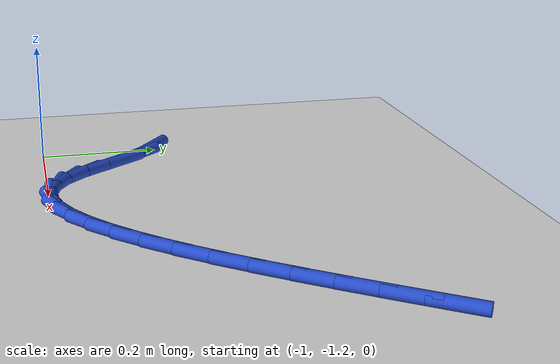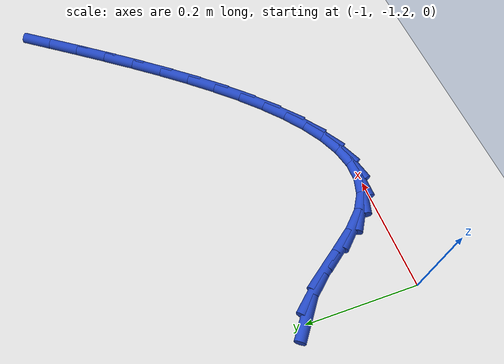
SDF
<sdf version="1.6">
 <world name="default">
  <model name="ground_plane">
   <static>1</static>
   <link name="link">
    <collision name="collision">
     <geometry><plane><normal>0 0 1</normal><size>100 100</size></plane></geometry>
     <surface><friction><ode><mu>100</mu><mu2>50</mu2></ode></friction></surface>
    </collision>
    <visual name="visual">
     <cast_shadows>0</cast_shadows>
     <geometry><plane><normal>0 0 1</normal><size>100 100</size></plane></geometry>
     <material>
      <script><uri>file://media/materials/scripts/gazebo.material</uri><name>Gazebo/WhiteGlow</name></script>
     </material>
    </visual>
   </link>
  </model>
  <model name="line">
   <link name="link_131">
    <pose>-0.9937536689839018 -1.0025890895803977 0.01 0 1.57 -0.6641025951538203</pose>
    <collision name="collision">
     <geometry><cylinder><radius>0.01</radius><length>0.08</length></cylinder></geometry>
    </collision>
    <visual name="visual">
     <material>
      <script><name>Gazebo/Blue</name><uri>file://media/materials/scripts/gazebo.material</uri></script>
     </material>
     <geometry><cylinder><radius>0.01</radius><length>0.08</length></cylinder></geometry>
    </visual>
   </link>
   <link name="link_132">
    <pose>-0.9610543212255697 -1.028182859112757 0.01 0 1.57 -0.8733507881151537</pose>
    <collision name="collision">
     <geometry><cylinder><radius>0.01</radius><length>0.08</length></cylinder></geometry>
    </collision>
    <visual name="visual">
     <material>
      <script><name>Gazebo/Blue</name><uri>file://media/materials/scripts/gazebo.material</uri></script>
     </material>
     <geometry><cylinder><radius>0.01</radius><length>0.08</length></cylinder></geometry>
    </visual>
   </link>
   <link name="link_133">
    <pose>-0.9320811222026775 -1.0627599283765623 0.01 0 1.57 -0.9589049269314014</pose>
    <collision name="collision">
     <geometry><cylinder><radius>0.01</radius><length>0.08</length></cylinder></geometry>
    </collision>
    <visual name="visual">
     <material>
      <script><name>Gazebo/Blue</name><uri>file://media/materials/scripts/gazebo.material</uri></script>
     </material>
     <geometry><cylinder><radius>0.01</radius><length>0.08</length></cylinder></geometry>
    </visual>
   </link>
   <link name="link_134">
    <pose>-0.9052864502870125 -1.1009432319284416 0.01 0 1.57 -0.9476968104496778</pose>
    <collision name="collision">
     <geometry><cylinder><radius>0.01</radius><length>0.08</length></cylinder></geometry>
    </collision>
    <visual name="visual">
     <material>
      <script><name>Gazebo/Blue</name><uri>file://media/materials/scripts/gazebo.material</uri></script>
     </material>
     <geometry><cylinder><radius>0.01</radius><length>0.08</length></cylinder></geometry>
    </visual>
   </link>
   <link name="link_135">
    <pose>-0.8791220112226042 -1.1373535976705909 0.01 0 1.57 -0.8247184940335629</pose>
    <collision name="collision">
     <geometry><cylinder><radius>0.01</radius><length>0.08</length></cylinder></geometry>
    </collision>
    <visual name="visual">
     <material>
      <script><name>Gazebo/Blue</name><uri>file://media/materials/scripts/gazebo.material</uri></script>
     </material>
     <geometry><cylinder><radius>0.01</radius><length>0.08</length></cylinder></geometry>
    </visual>
   </link>
   <link name="link_136">
    <pose>-0.8520487431936731 -1.1666442568312756 0.01 0 1.57 -0.5825287022843199</pose>
    <collision name="collision">
     <geometry><cylinder><radius>0.01</radius><length>0.08</length></cylinder></geometry>
    </collision>
    <visual name="visual">
     <material>
      <script><name>Gazebo/Blue</name><uri>file://media/materials/scripts/gazebo.material</uri></script>
     </material>
     <geometry><cylinder><radius>0.01</radius><length>0.08</length></cylinder></geometry>
    </visual>
   </link>
   <link name="link_137">
    <pose>-0.8231570698724355 -1.185677761587839 0.01 0 1.57 -0.2928301244444936</pose>
    <collision name="collision">
     <geometry><cylinder><radius>0.01</radius><length>0.08</length></cylinder></geometry>
    </collision>
    <visual name="visual">
     <material>
      <script><name>Gazebo/Blue</name><uri>file://media/materials/scripts/gazebo.material</uri></script>
     </material>
     <geometry><cylinder><radius>0.01</radius><length>0.08</length></cylinder></geometry>
    </visual>
   </link>
   <link name="link_138">
    <pose>-0.792559225085381 -1.1949029367527733 0.01 0 1.57 -0.006040373983618556</pose>
    <collision name="collision">
     <geometry><cylinder><radius>0.01</radius><length>0.08</length></cylinder></geometry>
    </collision>
    <visual name="visual">
     <material>
      <script><name>Gazebo/Blue</name><uri>file://media/materials/scripts/gazebo.material</uri></script>
     </material>
     <geometry><cylinder><radius>0.01</radius><length>0.08</length></cylinder></geometry>
    </visual>
   </link>
   <link name="link_139">
    <pose>-0.7604609592459 -1.1950968246407472 0.01 0 1.57 0.23684856560054332</pose>
    <collision name="collision">
     <geometry><cylinder><radius>0.01</radius><length>0.08</length></cylinder></geometry>
    </collision>
    <visual name="visual">
     <material>
      <script><name>Gazebo/Blue</name><uri>file://media/materials/scripts/gazebo.material</uri></script>
     </material>
     <geometry><cylinder><radius>0.01</radius><length>0.08</length></cylinder></geometry>
    </visual>
   </link>
   <link name="link_140">
    <pose>-0.7270680227673836 -1.18703646756643 0.01 0 1.57 0.4233536204951586</pose>
    <collision name="collision">
     <geometry><cylinder><radius>0.01</radius><length>0.08</length></cylinder></geometry>
    </collision>
    <visual name="visual">
     <material>
      <script><name>Gazebo/Blue</name><uri>file://media/materials/scripts/gazebo.material</uri></script>
     </material>
     <geometry><cylinder><radius>0.01</radius><length>0.08</length></cylinder></geometry>
    </visual>
   </link>
   <link name="link_141">
    <pose>-0.6925861660632229 -1.1714989078444908 0.01 0 1.57 0.5613311121087758</pose>
    <collision name="collision">
     <geometry><cylinder><radius>0.01</radius><length>0.08</length></cylinder></geometry>
    </collision>
    <visual name="visual">
     <material>
      <script><name>Gazebo/Blue</name><uri>file://media/materials/scripts/gazebo.material</uri></script>
     </material>
     <geometry><cylinder><radius>0.01</radius><length>0.08</length></cylinder></geometry>
    </visual>
   </link>
   <link name="link_142">
    <pose>-0.6572211395468077 -1.1492611877895986 0.01 0 1.57 0.6632491170831994</pose>
    <collision name="collision">
     <geometry><cylinder><radius>0.01</radius><length>0.08</length></cylinder></geometry>
    </collision>
    <visual name="visual">
     <material>
      <script><name>Gazebo/Blue</name><uri>file://media/materials/scripts/gazebo.material</uri></script>
     </material>
     <geometry><cylinder><radius>0.01</radius><length>0.08</length></cylinder></geometry>
    </visual>
   </link>
   <link name="link_143">
    <pose>-0.6211786936315308 -1.1211003497164234 0.01 0 1.57 0.7394958282717933</pose>
    <collision name="collision">
     <geometry><cylinder><radius>0.01</radius><length>0.08</length></cylinder></geometry>
    </collision>
    <visual name="visual">
     <material>
      <script><name>Gazebo/Blue</name><uri>file://media/materials/scripts/gazebo.material</uri></script>
     </material>
     <geometry><cylinder><radius>0.01</radius><length>0.08</length></cylinder></geometry>
    </visual>
   </link>
   <link name="link_144">
    <pose>-0.5846645787307815 -1.087793435939633 0.01 0 1.57 0.7974303796107567</pose>
    <collision name="collision">
     <geometry><cylinder><radius>0.01</radius><length>0.08</length></cylinder></geometry>
    </collision>
    <visual name="visual">
     <material>
      <script><name>Gazebo/Blue</name><uri>file://media/materials/scripts/gazebo.material</uri></script>
     </material>
     <geometry><cylinder><radius>0.01</radius><length>0.08</length></cylinder></geometry>
    </visual>
   </link>
   <link name="link_145">
    <pose>-0.5478845452579514 -1.0501174887738978 0.01 0 1.57 0.8420248219694493</pose>
    <collision name="collision">
     <geometry><cylinder><radius>0.01</radius><length>0.08</length></cylinder></geometry>
    </collision>
    <visual name="visual">
     <material>
      <script><name>Gazebo/Blue</name><uri>file://media/materials/scripts/gazebo.material</uri></script>
     </material>
     <geometry><cylinder><radius>0.01</radius><length>0.08</length></cylinder></geometry>
    </visual>
   </link>
   <link name="link_146">
    <pose>-0.5110443436264313 -1.0088495505338864 0.01 0 1.57 0.8766087983749042</pose>
    <collision name="collision">
     <geometry><cylinder><radius>0.01</radius><length>0.08</length></cylinder></geometry>
    </collision>
    <visual name="visual">
     <material>
      <script><name>Gazebo/Blue</name><uri>file://media/materials/scripts/gazebo.material</uri></script>
     </material>
     <geometry><cylinder><radius>0.01</radius><length>0.08</length></cylinder></geometry>
    </visual>
   </link>
   <link name="link_147">
    <pose>-0.4743497242496112 -0.964766663534267 0.01 0 1.57 0.9034140513394006</pose>
    <collision name="collision">
     <geometry><cylinder><radius>0.01</radius><length>0.08</length></cylinder></geometry>
    </collision>
    <visual name="visual">
     <material>
      <script><name>Gazebo/Blue</name><uri>file://media/materials/scripts/gazebo.material</uri></script>
     </material>
     <geometry><cylinder><radius>0.01</radius><length>0.08</length></cylinder></geometry>
    </visual>
   </link>
   <link name="link_148">
    <pose>-0.43800643754088353 -0.9186458700897109 0.01 0 1.57 0.923927458794307</pose>
    <collision name="collision">
     <geometry><cylinder><radius>0.01</radius><length>0.08</length></cylinder></geometry>
    </collision>
    <visual name="visual">
     <material>
      <script><name>Gazebo/Blue</name><uri>file://media/materials/scripts/gazebo.material</uri></script>
     </material>
     <geometry><cylinder><radius>0.01</radius><length>0.08</length></cylinder></geometry>
    </visual>
   </link>
   <link name="link_149">
    <pose>-0.40222023391363837 -0.871264212514886 0.01 0 1.57 0.9391077521648198</pose>
    <collision name="collision">
     <geometry><cylinder><radius>0.01</radius><length>0.08</length></cylinder></geometry>
    </collision>
    <visual name="visual">
     <material>
      <script><name>Gazebo/Blue</name><uri>file://media/materials/scripts/gazebo.material</uri></script>
     </material>
     <geometry><cylinder><radius>0.01</radius><length>0.08</length></cylinder></geometry>
    </visual>
   </link>
   <link name="link_150">
    <pose>-0.3671968637812666 -0.8233987331244611 0.01 0 1.57 0.9495092291627758</pose>
    <collision name="collision">
     <geometry><cylinder><radius>0.01</radius><length>0.08</length></cylinder></geometry>
    </collision>
    <visual name="visual">
     <material>
      <script><name>Gazebo/Blue</name><uri>file://media/materials/scripts/gazebo.material</uri></script>
     </material>
     <geometry><cylinder><radius>0.01</radius><length>0.08</length></cylinder></geometry>
    </visual>
   </link>
   <link name="link_151">
    <pose>-0.33314207755715913 -0.775826474233106 0.01 0 1.57 0.955337045682348</pose>
    <collision name="collision">
     <geometry><cylinder><radius>0.01</radius><length>0.08</length></cylinder></geometry>
    </collision>
    <visual name="visual">
     <material>
      <script><name>Gazebo/Blue</name><uri>file://media/materials/scripts/gazebo.material</uri></script>
     </material>
     <geometry><cylinder><radius>0.01</radius><length>0.08</length></cylinder></geometry>
    </visual>
   </link>
   <link name="link_152">
    <pose>-0.3002616256547068 -0.7293244781554895 0.01 0 1.57 0.9564412097336197</pose>
    <collision name="collision">
     <geometry><cylinder><radius>0.01</radius><length>0.08</length></cylinder></geometry>
    </collision>
    <visual name="visual">
     <material>
      <script><name>Gazebo/Blue</name><uri>file://media/materials/scripts/gazebo.material</uri></script>
     </material>
     <geometry><cylinder><radius>0.01</radius><length>0.08</length></cylinder></geometry>
    </visual>
   </link>
  </model>
 </world>
</sdf>
